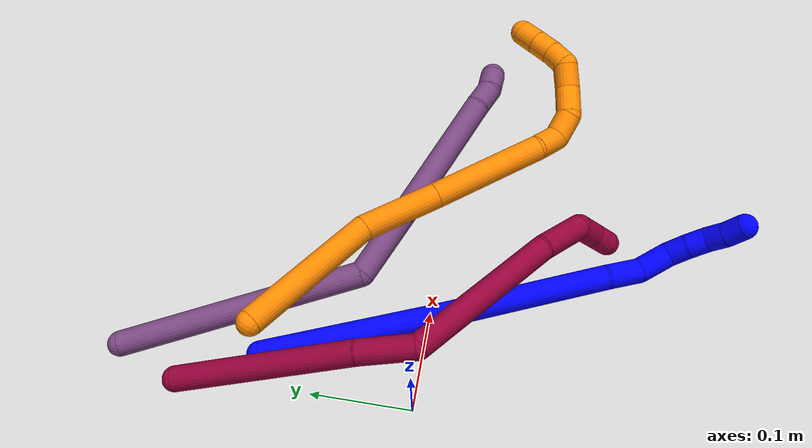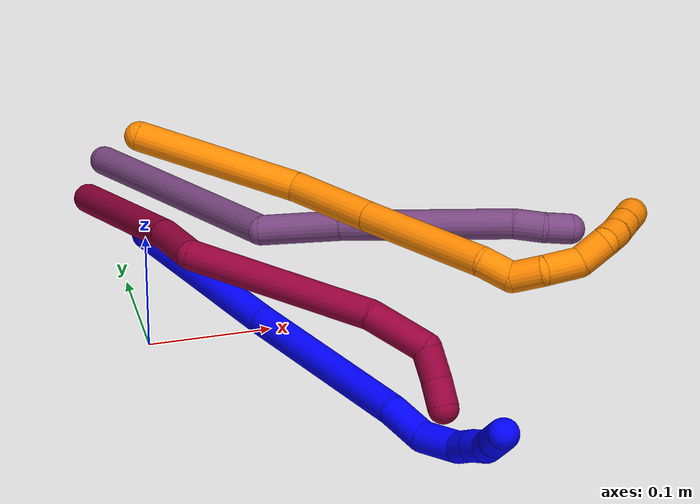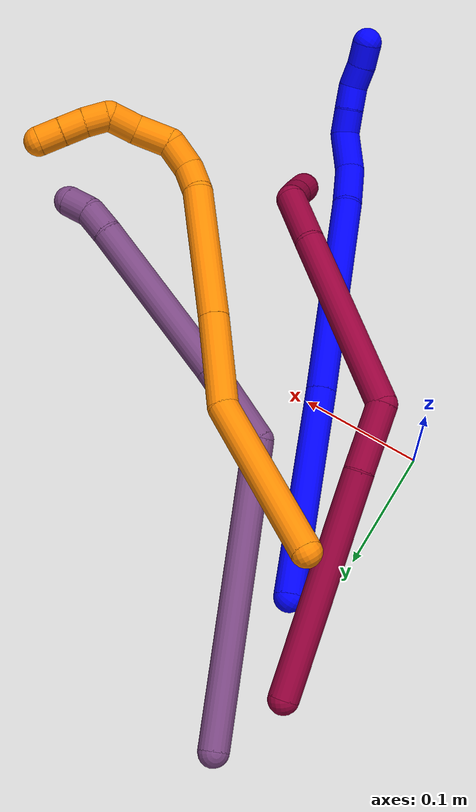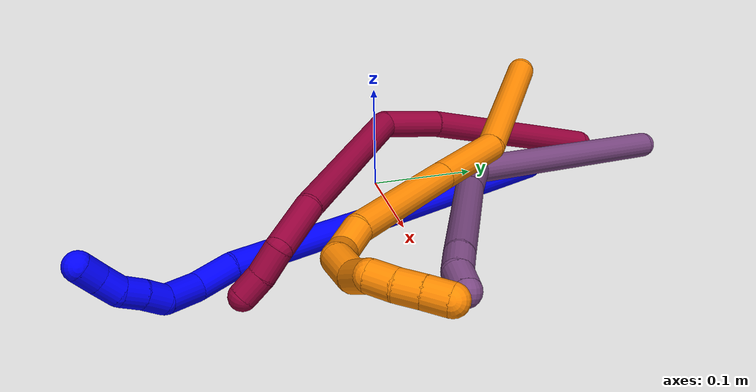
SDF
<sdf version="1.7">
 <world name="default">
  <model name="1">
   <static>0</static>
   <link name="1">
    <collision name="collision-cylinder-e_1_1_4">
     <pose>0.046167 -0.069559 0.026576 1.20585 0.554991 0.387284</pose>
     <geometry><cylinder><radius>0.0125</radius><length>0.175227</length></cylinder></geometry>
     <surface>
      <friction><ode><mu>1.16</mu><mu2>1.16</mu2><slip1>0</slip1><slip2>0</slip2></ode></friction>
      <contact><ode><kp>1e+06</kp><kd>1</kd><max_vel>0</max_vel><min_depth>0.001</min_depth></ode></contact>
     </surface>
    </collision>
    <visual name="visual-cylinder-e_1_1_4">
     <pose>0.046167 -0.069559 0.026576 1.20585 0.554991 0.387284</pose>
     <geometry><cylinder><radius>0.0125</radius><length>0.175227</length></cylinder></geometry>
     <material><ambient>0 0 1 1</ambient></material>
    </visual>
    <collision name="collision-cylinder-e_2_4_5">
     <pose>0.136479 -0.207616 0.081016 1.18444 0.538195 0.366912</pose>
     <geometry><cylinder><radius>0.0125</radius><length>0.172246</length></cylinder></geometry>
     <surface>
      <friction><ode><mu>1.16</mu><mu2>1.16</mu2><slip1>0</slip1><slip2>0</slip2></ode></friction>
      <contact><ode><kp>1e+06</kp><kd>1</kd><max_vel>0</max_vel><min_depth>0.001</min_depth></ode></contact>
     </surface>
    </collision>
    <visual name="visual-cylinder-e_2_4_5">
     <pose>0.136479 -0.207616 0.081016 1.18444 0.538195 0.366912</pose>
     <geometry><cylinder><radius>0.0125</radius><length>0.172246</length></cylinder></geometry>
     <material><ambient>0 0 1 1</ambient></material>
    </visual>
    <collision name="collision-cylinder-e_3_5_6">
     <pose>0.192838 -0.288464 0.114089 1.17179 0.738982 0.503129</pose>
     <geometry><cylinder><radius>0.0125</radius><length>0.036268</length></cylinder></geometry>
     <surface>
      <friction><ode><mu>1.16</mu><mu2>1.16</mu2><slip1>0</slip1><slip2>0</slip2></ode></friction>
      <contact><ode><kp>1e+06</kp><kd>1</kd><max_vel>0</max_vel><min_depth>0.001</min_depth></ode></contact>
     </surface>
    </collision>
    <visual name="visual-cylinder-e_3_5_6">
     <pose>0.192838 -0.288464 0.114089 1.17179 0.738982 0.503129</pose>
     <geometry><cylinder><radius>0.0125</radius><length>0.036268</length></cylinder></geometry>
     <material><ambient>0 0 1 1</ambient></material>
    </visual>
    <collision name="collision-cylinder-e_4_6_7">
     <pose>0.212732 -0.312734 0.129083 0.883285 0.462025 0.2215</pose>
     <geometry><cylinder><radius>0.0125</radius><length>0.034458</length></cylinder></geometry>
     <surface>
      <friction><ode><mu>1.16</mu><mu2>1.16</mu2><slip1>0</slip1><slip2>0</slip2></ode></friction>
      <contact><ode><kp>1e+06</kp><kd>1</kd><max_vel>0</max_vel><min_depth>0.001</min_depth></ode></contact>
     </surface>
    </collision>
    <visual name="visual-cylinder-e_4_6_7">
     <pose>0.212732 -0.312734 0.129083 0.883285 0.462025 0.2215</pose>
     <geometry><cylinder><radius>0.0125</radius><length>0.034458</length></cylinder></geometry>
     <material><ambient>0 0 1 1</ambient></material>
    </visual>
    <collision name="collision-cylinder-e_5_7_8">
     <pose>0.220395 -0.334263 0.143536 1.11885 -0.001604 -0.001004</pose>
     <geometry><cylinder><radius>0.0125</radius><length>0.021364</length></cylinder></geometry>
     <surface>
      <friction><ode><mu>1.16</mu><mu2>1.16</mu2><slip1>0</slip1><slip2>0</slip2></ode></friction>
      <contact><ode><kp>1e+06</kp><kd>1</kd><max_vel>0</max_vel><min_depth>0.001</min_depth></ode></contact>
     </surface>
    </collision>
    <visual name="visual-cylinder-e_5_7_8">
     <pose>0.220395 -0.334263 0.143536 1.11885 -0.001604 -0.001004</pose>
     <geometry><cylinder><radius>0.0125</radius><length>0.021364</length></cylinder></geometry>
     <material><ambient>0 0 1 1</ambient></material>
    </visual>
    <collision name="collision-cylinder-e_6_8_9">
     <pose>0.221396 -0.353124 0.152371 1.14733 0.099965 0.064624</pose>
     <geometry><cylinder><radius>0.0125</radius><length>0.020397</length></cylinder></geometry>
     <surface>
      <friction><ode><mu>1.16</mu><mu2>1.16</mu2><slip1>0</slip1><slip2>0</slip2></ode></friction>
      <contact><ode><kp>1e+06</kp><kd>1</kd><max_vel>0</max_vel><min_depth>0.001</min_depth></ode></contact>
     </surface>
    </collision>
    <visual name="visual-cylinder-e_6_8_9">
     <pose>0.221396 -0.353124 0.152371 1.14733 0.099965 0.064624</pose>
     <geometry><cylinder><radius>0.0125</radius><length>0.020397</length></cylinder></geometry>
     <material><ambient>0 0 1 1</ambient></material>
    </visual>
    <collision name="collision-cylinder-e_7_9_10">
     <pose>0.219901 -0.37169 0.159203 1.29237 -0.253772 -0.191839</pose>
     <geometry><cylinder><radius>0.0125</radius><length>0.020017</length></cylinder></geometry>
     <surface>
      <friction><ode><mu>1.16</mu><mu2>1.16</mu2><slip1>0</slip1><slip2>0</slip2></ode></friction>
      <contact><ode><kp>1e+06</kp><kd>1</kd><max_vel>0</max_vel><min_depth>0.001</min_depth></ode></contact>
     </surface>
    </collision>
    <visual name="visual-cylinder-e_7_9_10">
     <pose>0.219901 -0.37169 0.159203 1.29237 -0.253772 -0.191839</pose>
     <geometry><cylinder><radius>0.0125</radius><length>0.020017</length></cylinder></geometry>
     <material><ambient>0 0 1 1</ambient></material>
    </visual>
    <collision name="collision-cylinder-e_8_10_2">
     <pose>0.214698 -0.389813 0.165789 1.1518 -0.272066 -0.177291</pose>
     <geometry><cylinder><radius>0.0125</radius><length>0.020023</length></cylinder></geometry>
     <surface>
      <friction><ode><mu>1.16</mu><mu2>1.16</mu2><slip1>0</slip1><slip2>0</slip2></ode></friction>
      <contact><ode><kp>1e+06</kp><kd>1</kd><max_vel>0</max_vel><min_depth>0.001</min_depth></ode></contact>
     </surface>
    </collision>
    <visual name="visual-cylinder-e_8_10_2">
     <pose>0.214698 -0.389813 0.165789 1.1518 -0.272066 -0.177291</pose>
     <geometry><cylinder><radius>0.0125</radius><length>0.020023</length></cylinder></geometry>
     <material><ambient>0 0 1 1</ambient></material>
    </visual>
    <collision name="collision-sphere-2">
     <pose>0.212008 -0.398623 0.169712 0 -0 0</pose>
     <geometry><sphere><radius>0.0125</radius></sphere></geometry>
     <surface>
      <friction><ode><mu>1.16</mu><mu2>1.16</mu2><slip1>0</slip1><slip2>0</slip2></ode></friction>
      <contact><ode><kp>1e+06</kp><kd>1</kd><max_vel>0</max_vel><min_depth>0.001</min_depth></ode></contact>
     </surface>
    </collision>
    <visual name="visual-sphere-2">
     <pose>0.212008 -0.398623 0.169712 0 -0 0</pose>
     <geometry><sphere><radius>0.0125</radius></sphere></geometry>
     <material><ambient>0 0 1 1</ambient></material>
    </visual>
    <collision name="collision-sphere-10">
     <pose>0.217388 -0.381004 0.161866 0 -0 0</pose>
     <geometry><sphere><radius>0.0125</radius></sphere></geometry>
     <surface>
      <friction><ode><mu>1.16</mu><mu2>1.16</mu2><slip1>0</slip1><slip2>0</slip2></ode></friction>
      <contact><ode><kp>1e+06</kp><kd>1</kd><max_vel>0</max_vel><min_depth>0.001</min_depth></ode></contact>
     </surface>
    </collision>
    <visual name="visual-sphere-10">
     <pose>0.217388 -0.381004 0.161866 0 -0 0</pose>
     <geometry><sphere><radius>0.0125</radius></sphere></geometry>
     <material><ambient>0 0 1 1</ambient></material>
    </visual>
    <collision name="collision-sphere-9">
     <pose>0.222414 -0.362375 0.156541 0 -0 0</pose>
     <geometry><sphere><radius>0.0125</radius></sphere></geometry>
     <surface>
      <friction><ode><mu>1.16</mu><mu2>1.16</mu2><slip1>0</slip1><slip2>0</slip2></ode></friction>
      <contact><ode><kp>1e+06</kp><kd>1</kd><max_vel>0</max_vel><min_depth>0.001</min_depth></ode></contact>
     </surface>
    </collision>
    <visual name="visual-sphere-9">
     <pose>0.222414 -0.362375 0.156541 0 -0 0</pose>
     <geometry><sphere><radius>0.0125</radius></sphere></geometry>
     <material><ambient>0 0 1 1</ambient></material>
    </visual>
    <collision name="collision-sphere-4">
     <pose>0.092334 -0.139119 0.053151 0 -0 0</pose>
     <geometry><sphere><radius>0.0125</radius></sphere></geometry>
     <surface>
      <friction><ode><mu>1.16</mu><mu2>1.16</mu2><slip1>0</slip1><slip2>0</slip2></ode></friction>
      <contact><ode><kp>1e+06</kp><kd>1</kd><max_vel>0</max_vel><min_depth>0.001</min_depth></ode></contact>
     </surface>
    </collision>
    <visual name="visual-sphere-4">
     <pose>0.092334 -0.139119 0.053151 0 -0 0</pose>
     <geometry><sphere><radius>0.0125</radius></sphere></geometry>
     <material><ambient>0 0 1 1</ambient></material>
    </visual>
    <collision name="collision-sphere-1">
     <geometry><sphere><radius>0.0125</radius></sphere></geometry>
     <surface>
      <friction><ode><mu>1.16</mu><mu2>1.16</mu2><slip1>0</slip1><slip2>0</slip2></ode></friction>
      <contact><ode><kp>1e+06</kp><kd>1</kd><max_vel>0</max_vel><min_depth>0.001</min_depth></ode></contact>
     </surface>
    </collision>
    <visual name="visual-sphere-1">
     <geometry><sphere><radius>0.0125</radius></sphere></geometry>
     <material><ambient>0 0 1 1</ambient></material>
    </visual>
    <collision name="collision-sphere-8">
     <pose>0.220378 -0.343872 0.148201 0 -0 0</pose>
     <geometry><sphere><radius>0.0125</radius></sphere></geometry>
     <surface>
      <friction><ode><mu>1.16</mu><mu2>1.16</mu2><slip1>0</slip1><slip2>0</slip2></ode></friction>
      <contact><ode><kp>1e+06</kp><kd>1</kd><max_vel>0</max_vel><min_depth>0.001</min_depth></ode></contact>
     </surface>
    </collision>
    <visual name="visual-sphere-8">
     <pose>0.220378 -0.343872 0.148201 0 -0 0</pose>
     <geometry><sphere><radius>0.0125</radius></sphere></geometry>
     <material><ambient>0 0 1 1</ambient></material>
    </visual>
    <collision name="collision-sphere-5">
     <pose>0.180625 -0.276114 0.108881 0 -0 0</pose>
     <geometry><sphere><radius>0.0125</radius></sphere></geometry>
     <surface>
      <friction><ode><mu>1.16</mu><mu2>1.16</mu2><slip1>0</slip1><slip2>0</slip2></ode></friction>
      <contact><ode><kp>1e+06</kp><kd>1</kd><max_vel>0</max_vel><min_depth>0.001</min_depth></ode></contact>
     </surface>
    </collision>
    <visual name="visual-sphere-5">
     <pose>0.180625 -0.276114 0.108881 0 -0 0</pose>
     <geometry><sphere><radius>0.0125</radius></sphere></geometry>
     <material><ambient>0 0 1 1</ambient></material>
    </visual>
    <collision name="collision-sphere-6">
     <pose>0.205052 -0.300815 0.119296 0 -0 0</pose>
     <geometry><sphere><radius>0.0125</radius></sphere></geometry>
     <surface>
      <friction><ode><mu>1.16</mu><mu2>1.16</mu2><slip1>0</slip1><slip2>0</slip2></ode></friction>
      <contact><ode><kp>1e+06</kp><kd>1</kd><max_vel>0</max_vel><min_depth>0.001</min_depth></ode></contact>
     </surface>
    </collision>
    <visual name="visual-sphere-6">
     <pose>0.205052 -0.300815 0.119296 0 -0 0</pose>
     <geometry><sphere><radius>0.0125</radius></sphere></geometry>
     <material><ambient>0 0 1 1</ambient></material>
    </visual>
    <collision name="collision-sphere-7">
     <pose>0.220412 -0.324654 0.138871 0 -0 0</pose>
     <geometry><sphere><radius>0.0125</radius></sphere></geometry>
     <surface>
      <friction><ode><mu>1.16</mu><mu2>1.16</mu2><slip1>0</slip1><slip2>0</slip2></ode></friction>
      <contact><ode><kp>1e+06</kp><kd>1</kd><max_vel>0</max_vel><min_depth>0.001</min_depth></ode></contact>
     </surface>
    </collision>
    <visual name="visual-sphere-7">
     <pose>0.220412 -0.324654 0.138871 0 -0 0</pose>
     <geometry><sphere><radius>0.0125</radius></sphere></geometry>
     <material><ambient>0 0 1 1</ambient></material>
    </visual>
    <inertial>
     <pose>0.127694 -0.197554 0.079756 0 -0 0</pose>
     <mass>0.5</mass>
     <inertia>
      <ixx>0.001017</ixx>
      <ixy>0</ixy>
      <ixz>0</ixz>
      <iyy>0.000721</iyy>
      <iyz>0</iyz>
      <izz>0.000264</izz>
     </inertia>
    </inertial>
   </link>
   <pose>0.027678 0.154079 0.011464 -0.835893 0.973177 -0.877182</pose>
  </model>
  <model name="8">
   <static>0</static>
   <link name="8">
    <collision name="collision-cylinder-e_1_1_4">
     <pose>0.044665 -0.073542 -0.032472 1.98659 0.50712 0.757034</pose>
     <geometry><cylinder><radius>0.0125</radius><length>0.183933</length></cylinder></geometry>
     <surface>
      <friction><ode><mu>1.16</mu><mu2>1.16</mu2><slip1>0</slip1><slip2>0</slip2></ode></friction>
      <contact><ode><kp>1e+06</kp><kd>1</kd><max_vel>0</max_vel><min_depth>0.001</min_depth></ode></contact>
     </surface>
    </collision>
    <visual name="visual-cylinder-e_1_1_4">
     <pose>0.044665 -0.073542 -0.032472 1.98659 0.50712 0.757034</pose>
     <geometry><cylinder><radius>0.0125</radius><length>0.183933</length></cylinder></geometry>
     <material><ambient>0.584314 0 0.227451 1</ambient></material>
    </visual>
    <collision name="collision-cylinder-e_2_4_5">
     <pose>0.106014 -0.167622 -0.074491 2.00596 0.63495 0.951338</pose>
     <geometry><cylinder><radius>0.0125</radius><length>0.056261</length></cylinder></geometry>
     <surface>
      <friction><ode><mu>1.16</mu><mu2>1.16</mu2><slip1>0</slip1><slip2>0</slip2></ode></friction>
      <contact><ode><kp>1e+06</kp><kd>1</kd><max_vel>0</max_vel><min_depth>0.001</min_depth></ode></contact>
     </surface>
    </collision>
    <visual name="visual-cylinder-e_2_4_5">
     <pose>0.106014 -0.167622 -0.074491 2.00596 0.63495 0.951338</pose>
     <geometry><cylinder><radius>0.0125</radius><length>0.056261</length></cylinder></geometry>
     <material><ambient>0.584314 0 0.227451 1</ambient></material>
    </visual>
    <collision name="collision-cylinder-e_3_5_6">
     <pose>0.17516 -0.239551 -0.054064 1.04278 0.722649 0.427523</pose>
     <geometry><cylinder><radius>0.0125</radius><length>0.158642</length></cylinder></geometry>
     <surface>
      <friction><ode><mu>1.16</mu><mu2>1.16</mu2><slip1>0</slip1><slip2>0</slip2></ode></friction>
      <contact><ode><kp>1e+06</kp><kd>1</kd><max_vel>0</max_vel><min_depth>0.001</min_depth></ode></contact>
     </surface>
    </collision>
    <visual name="visual-cylinder-e_3_5_6">
     <pose>0.17516 -0.239551 -0.054064 1.04278 0.722649 0.427523</pose>
     <geometry><cylinder><radius>0.0125</radius><length>0.158642</length></cylinder></geometry>
     <material><ambient>0.584314 0 0.227451 1</ambient></material>
    </visual>
    <collision name="collision-cylinder-e_4_6_7">
     <pose>0.248468 -0.303165 -0.014624 0.911806 0.932756 0.484031</pose>
     <geometry><cylinder><radius>0.0125</radius><length>0.051905</length></cylinder></geometry>
     <surface>
      <friction><ode><mu>1.16</mu><mu2>1.16</mu2><slip1>0</slip1><slip2>0</slip2></ode></friction>
      <contact><ode><kp>1e+06</kp><kd>1</kd><max_vel>0</max_vel><min_depth>0.001</min_depth></ode></contact>
     </surface>
    </collision>
    <visual name="visual-cylinder-e_4_6_7">
     <pose>0.248468 -0.303165 -0.014624 0.911806 0.932756 0.484031</pose>
     <geometry><cylinder><radius>0.0125</radius><length>0.051905</length></cylinder></geometry>
     <material><ambient>0.584314 0 0.227451 1</ambient></material>
    </visual>
    <collision name="collision-cylinder-e_5_7_8">
     <pose>0.282415 -0.31356 -0.004885 -1.4221 1.43077 -1.28503</pose>
     <geometry><cylinder><radius>0.0125</radius><length>0.026459</length></cylinder></geometry>
     <surface>
      <friction><ode><mu>1.16</mu><mu2>1.16</mu2><slip1>0</slip1><slip2>0</slip2></ode></friction>
      <contact><ode><kp>1e+06</kp><kd>1</kd><max_vel>0</max_vel><min_depth>0.001</min_depth></ode></contact>
     </surface>
    </collision>
    <visual name="visual-cylinder-e_5_7_8">
     <pose>0.282415 -0.31356 -0.004885 -1.4221 1.43077 -1.28503</pose>
     <geometry><cylinder><radius>0.0125</radius><length>0.026459</length></cylinder></geometry>
     <material><ambient>0.584314 0 0.227451 1</ambient></material>
    </visual>
    <collision name="collision-cylinder-e_6_8_2">
     <pose>0.306789 -0.310939 -0.006098 -2.6505 1.42239 -2.5755</pose>
     <geometry><cylinder><radius>0.0125</radius><length>0.0228</length></cylinder></geometry>
     <surface>
      <friction><ode><mu>1.16</mu><mu2>1.16</mu2><slip1>0</slip1><slip2>0</slip2></ode></friction>
      <contact><ode><kp>1e+06</kp><kd>1</kd><max_vel>0</max_vel><min_depth>0.001</min_depth></ode></contact>
     </surface>
    </collision>
    <visual name="visual-cylinder-e_6_8_2">
     <pose>0.306789 -0.310939 -0.006098 -2.6505 1.42239 -2.5755</pose>
     <geometry><cylinder><radius>0.0125</radius><length>0.0228</length></cylinder></geometry>
     <material><ambient>0.584314 0 0.227451 1</ambient></material>
    </visual>
    <collision name="collision-sphere-2">
     <pose>0.318064 -0.310144 -0.007584 0 -0 0</pose>
     <geometry><sphere><radius>0.0125</radius></sphere></geometry>
     <surface>
      <friction><ode><mu>1.16</mu><mu2>1.16</mu2><slip1>0</slip1><slip2>0</slip2></ode></friction>
      <contact><ode><kp>1e+06</kp><kd>1</kd><max_vel>0</max_vel><min_depth>0.001</min_depth></ode></contact>
     </surface>
    </collision>
    <visual name="visual-sphere-2">
     <pose>0.318064 -0.310144 -0.007584 0 -0 0</pose>
     <geometry><sphere><radius>0.0125</radius></sphere></geometry>
     <material><ambient>0.584314 0 0.227451 1</ambient></material>
    </visual>
    <collision name="collision-sphere-4">
     <pose>0.089329 -0.147085 -0.064944 0 -0 0</pose>
     <geometry><sphere><radius>0.0125</radius></sphere></geometry>
     <surface>
      <friction><ode><mu>1.16</mu><mu2>1.16</mu2><slip1>0</slip1><slip2>0</slip2></ode></friction>
      <contact><ode><kp>1e+06</kp><kd>1</kd><max_vel>0</max_vel><min_depth>0.001</min_depth></ode></contact>
     </surface>
    </collision>
    <visual name="visual-sphere-4">
     <pose>0.089329 -0.147085 -0.064944 0 -0 0</pose>
     <geometry><sphere><radius>0.0125</radius></sphere></geometry>
     <material><ambient>0.584314 0 0.227451 1</ambient></material>
    </visual>
    <collision name="collision-sphere-1">
     <geometry><sphere><radius>0.0125</radius></sphere></geometry>
     <surface>
      <friction><ode><mu>1.16</mu><mu2>1.16</mu2><slip1>0</slip1><slip2>0</slip2></ode></friction>
      <contact><ode><kp>1e+06</kp><kd>1</kd><max_vel>0</max_vel><min_depth>0.001</min_depth></ode></contact>
     </surface>
    </collision>
    <visual name="visual-sphere-1">
     <geometry><sphere><radius>0.0125</radius></sphere></geometry>
     <material><ambient>0.584314 0 0.227451 1</ambient></material>
    </visual>
    <collision name="collision-sphere-8">
     <pose>0.295515 -0.311734 -0.004611 0 -0 0</pose>
     <geometry><sphere><radius>0.0125</radius></sphere></geometry>
     <surface>
      <friction><ode><mu>1.16</mu><mu2>1.16</mu2><slip1>0</slip1><slip2>0</slip2></ode></friction>
      <contact><ode><kp>1e+06</kp><kd>1</kd><max_vel>0</max_vel><min_depth>0.001</min_depth></ode></contact>
     </surface>
    </collision>
    <visual name="visual-sphere-8">
     <pose>0.295515 -0.311734 -0.004611 0 -0 0</pose>
     <geometry><sphere><radius>0.0125</radius></sphere></geometry>
     <material><ambient>0.584314 0 0.227451 1</ambient></material>
    </visual>
    <collision name="collision-sphere-5">
     <pose>0.1227 -0.188159 -0.084039 0 -0 0</pose>
     <geometry><sphere><radius>0.0125</radius></sphere></geometry>
     <surface>
      <friction><ode><mu>1.16</mu><mu2>1.16</mu2><slip1>0</slip1><slip2>0</slip2></ode></friction>
      <contact><ode><kp>1e+06</kp><kd>1</kd><max_vel>0</max_vel><min_depth>0.001</min_depth></ode></contact>
     </surface>
    </collision>
    <visual name="visual-sphere-5">
     <pose>0.1227 -0.188159 -0.084039 0 -0 0</pose>
     <geometry><sphere><radius>0.0125</radius></sphere></geometry>
     <material><ambient>0.584314 0 0.227451 1</ambient></material>
    </visual>
    <collision name="collision-sphere-6">
     <pose>0.227621 -0.290944 -0.024089 0 -0 0</pose>
     <geometry><sphere><radius>0.0125</radius></sphere></geometry>
     <surface>
      <friction><ode><mu>1.16</mu><mu2>1.16</mu2><slip1>0</slip1><slip2>0</slip2></ode></friction>
      <contact><ode><kp>1e+06</kp><kd>1</kd><max_vel>0</max_vel><min_depth>0.001</min_depth></ode></contact>
     </surface>
    </collision>
    <visual name="visual-sphere-6">
     <pose>0.227621 -0.290944 -0.024089 0 -0 0</pose>
     <geometry><sphere><radius>0.0125</radius></sphere></geometry>
     <material><ambient>0.584314 0 0.227451 1</ambient></material>
    </visual>
    <collision name="collision-sphere-7">
     <pose>0.269315 -0.315386 -0.005158 0 -0 0</pose>
     <geometry><sphere><radius>0.0125</radius></sphere></geometry>
     <surface>
      <friction><ode><mu>1.16</mu><mu2>1.16</mu2><slip1>0</slip1><slip2>0</slip2></ode></friction>
      <contact><ode><kp>1e+06</kp><kd>1</kd><max_vel>0</max_vel><min_depth>0.001</min_depth></ode></contact>
     </surface>
    </collision>
    <visual name="visual-sphere-7">
     <pose>0.269315 -0.315386 -0.005158 0 -0 0</pose>
     <geometry><sphere><radius>0.0125</radius></sphere></geometry>
     <material><ambient>0.584314 0 0.227451 1</ambient></material>
    </visual>
    <inertial>
     <pose>0.138663 -0.184164 -0.039536 0 -0 0</pose>
     <mass>0.5</mass>
     <inertia>
      <ixx>0.001041</ixx>
      <ixy>0</ixy>
      <ixz>0</ixz>
      <iyy>0.000672</iyy>
      <iyz>0</iyz>
      <izz>0.000153</izz>
     </inertia>
    </inertial>
   </link>
   <pose>-0.009592 0.226153 0.011874 -1.89711 0.748783 -1.28743</pose>
  </model>
  <model name="19">
   <static>0</static>
   <link name="19">
    <collision name="collision-cylinder-e_1_1_4">
     <pose>0.03978 0.0179 0.054421 -0.31778 0.606943 -0.100273</pose>
     <geometry><cylinder><radius>0.0125</radius><length>0.139492</length></cylinder></geometry>
     <surface>
      <friction><ode><mu>1.16</mu><mu2>1.16</mu2><slip1>0</slip1><slip2>0</slip2></ode></friction>
      <contact><ode><kp>1e+06</kp><kd>1</kd><max_vel>0</max_vel><min_depth>0.001</min_depth></ode></contact>
     </surface>
    </collision>
    <visual name="visual-cylinder-e_1_1_4">
     <pose>0.03978 0.0179 0.054421 -0.31778 0.606943 -0.100273</pose>
     <geometry><cylinder><radius>0.0125</radius><length>0.139492</length></cylinder></geometry>
     <material><ambient>0.996078 0.537255 0 1</ambient></material>
    </visual>
    <collision name="collision-cylinder-e_2_4_5">
     <pose>0.102343 0.030559 0.138924 0.172505 0.640988 0.057388</pose>
     <geometry><cylinder><radius>0.0125</radius><length>0.076197</length></cylinder></geometry>
     <surface>
      <friction><ode><mu>1.16</mu><mu2>1.16</mu2><slip1>0</slip1><slip2>0</slip2></ode></friction>
      <contact><ode><kp>1e+06</kp><kd>1</kd><max_vel>0</max_vel><min_depth>0.001</min_depth></ode></contact>
     </surface>
    </collision>
    <visual name="visual-cylinder-e_2_4_5">
     <pose>0.102343 0.030559 0.138924 0.172505 0.640988 0.057388</pose>
     <geometry><cylinder><radius>0.0125</radius><length>0.076197</length></cylinder></geometry>
     <material><ambient>0.996078 0.537255 0 1</ambient></material>
    </visual>
    <collision name="collision-cylinder-e_3_5_6">
     <pose>0.158636 0.018524 0.214314 0.148851 0.631528 0.048709</pose>
     <geometry><cylinder><radius>0.0125</radius><length>0.113523</length></cylinder></geometry>
     <surface>
      <friction><ode><mu>1.16</mu><mu2>1.16</mu2><slip1>0</slip1><slip2>0</slip2></ode></friction>
      <contact><ode><kp>1e+06</kp><kd>1</kd><max_vel>0</max_vel><min_depth>0.001</min_depth></ode></contact>
     </surface>
    </collision>
    <visual name="visual-cylinder-e_3_5_6">
     <pose>0.158636 0.018524 0.214314 0.148851 0.631528 0.048709</pose>
     <geometry><cylinder><radius>0.0125</radius><length>0.113523</length></cylinder></geometry>
     <material><ambient>0.996078 0.537255 0 1</ambient></material>
    </visual>
    <collision name="collision-cylinder-e_4_6_7">
     <pose>0.201612 0.013764 0.26913 -0.210836 0.771921 -0.085937</pose>
     <geometry><cylinder><radius>0.0125</radius><length>0.027141</length></cylinder></geometry>
     <surface>
      <friction><ode><mu>1.16</mu><mu2>1.16</mu2><slip1>0</slip1><slip2>0</slip2></ode></friction>
      <contact><ode><kp>1e+06</kp><kd>1</kd><max_vel>0</max_vel><min_depth>0.001</min_depth></ode></contact>
     </surface>
    </collision>
    <visual name="visual-cylinder-e_4_6_7">
     <pose>0.201612 0.013764 0.26913 -0.210836 0.771921 -0.085937</pose>
     <geometry><cylinder><radius>0.0125</radius><length>0.027141</length></cylinder></geometry>
     <material><ambient>0.996078 0.537255 0 1</ambient></material>
    </visual>
    <collision name="collision-cylinder-e_5_7_8">
     <pose>0.21244 0.018211 0.291212 -0.189474 0.106005 -0.010082</pose>
     <geometry><cylinder><radius>0.0125</radius><length>0.025749</length></cylinder></geometry>
     <surface>
      <friction><ode><mu>1.16</mu><mu2>1.16</mu2><slip1>0</slip1><slip2>0</slip2></ode></friction>
      <contact><ode><kp>1e+06</kp><kd>1</kd><max_vel>0</max_vel><min_depth>0.001</min_depth></ode></contact>
     </surface>
    </collision>
    <visual name="visual-cylinder-e_5_7_8">
     <pose>0.21244 0.018211 0.291212 -0.189474 0.106005 -0.010082</pose>
     <geometry><cylinder><radius>0.0125</radius><length>0.025749</length></cylinder></geometry>
     <material><ambient>0.996078 0.537255 0 1</ambient></material>
    </visual>
    <collision name="collision-cylinder-e_6_8_9">
     <pose>0.213935 0.031405 0.315097 -0.761477 0.008478 -0.003394</pose>
     <geometry><cylinder><radius>0.0125</radius><length>0.031258</length></cylinder></geometry>
     <surface>
      <friction><ode><mu>1.16</mu><mu2>1.16</mu2><slip1>0</slip1><slip2>0</slip2></ode></friction>
      <contact><ode><kp>1e+06</kp><kd>1</kd><max_vel>0</max_vel><min_depth>0.001</min_depth></ode></contact>
     </surface>
    </collision>
    <visual name="visual-cylinder-e_6_8_9">
     <pose>0.213935 0.031405 0.315097 -0.761477 0.008478 -0.003394</pose>
     <geometry><cylinder><radius>0.0125</radius><length>0.031258</length></cylinder></geometry>
     <material><ambient>0.996078 0.537255 0 1</ambient></material>
    </visual>
    <collision name="collision-cylinder-e_7_9_10">
     <pose>0.209063 0.048193 0.336428 -0.539901 -0.404769 0.113434</pose>
     <geometry><cylinder><radius>0.0125</radius><length>0.025413</length></cylinder></geometry>
     <surface>
      <friction><ode><mu>1.16</mu><mu2>1.16</mu2><slip1>0</slip1><slip2>0</slip2></ode></friction>
      <contact><ode><kp>1e+06</kp><kd>1</kd><max_vel>0</max_vel><min_depth>0.001</min_depth></ode></contact>
     </surface>
    </collision>
    <visual name="visual-cylinder-e_7_9_10">
     <pose>0.209063 0.048193 0.336428 -0.539901 -0.404769 0.113434</pose>
     <geometry><cylinder><radius>0.0125</radius><length>0.025413</length></cylinder></geometry>
     <material><ambient>0.996078 0.537255 0 1</ambient></material>
    </visual>
    <collision name="collision-cylinder-e_8_10_11">
     <pose>0.200757 0.06378 0.348503 -1.35942 -0.324964 0.263433</pose>
     <geometry><cylinder><radius>0.0125</radius><length>0.020685</length></cylinder></geometry>
     <surface>
      <friction><ode><mu>1.16</mu><mu2>1.16</mu2><slip1>0</slip1><slip2>0</slip2></ode></friction>
      <contact><ode><kp>1e+06</kp><kd>1</kd><max_vel>0</max_vel><min_depth>0.001</min_depth></ode></contact>
     </surface>
    </collision>
    <visual name="visual-cylinder-e_8_10_11">
     <pose>0.200757 0.06378 0.348503 -1.35942 -0.324964 0.263433</pose>
     <geometry><cylinder><radius>0.0125</radius><length>0.020685</length></cylinder></geometry>
     <material><ambient>0.996078 0.537255 0 1</ambient></material>
    </visual>
    <collision name="collision-cylinder-e_9_11_12">
     <pose>0.193458 0.082687 0.351455 -1.47496 -0.403295 0.36725</pose>
     <geometry><cylinder><radius>0.0125</radius><length>0.020368</length></cylinder></geometry>
     <surface>
      <friction><ode><mu>1.16</mu><mu2>1.16</mu2><slip1>0</slip1><slip2>0</slip2></ode></friction>
      <contact><ode><kp>1e+06</kp><kd>1</kd><max_vel>0</max_vel><min_depth>0.001</min_depth></ode></contact>
     </surface>
    </collision>
    <visual name="visual-cylinder-e_9_11_12">
     <pose>0.193458 0.082687 0.351455 -1.47496 -0.403295 0.36725</pose>
     <geometry><cylinder><radius>0.0125</radius><length>0.020368</length></cylinder></geometry>
     <material><ambient>0.996078 0.537255 0 1</ambient></material>
    </visual>
    <collision name="collision-cylinder-e_10_12_2">
     <pose>0.185734 0.101347 0.353185 -1.48183 -0.3785 0.346912</pose>
     <geometry><cylinder><radius>0.0125</radius><length>0.020174</length></cylinder></geometry>
     <surface>
      <friction><ode><mu>1.16</mu><mu2>1.16</mu2><slip1>0</slip1><slip2>0</slip2></ode></friction>
      <contact><ode><kp>1e+06</kp><kd>1</kd><max_vel>0</max_vel><min_depth>0.001</min_depth></ode></contact>
     </surface>
    </collision>
    <visual name="visual-cylinder-e_10_12_2">
     <pose>0.185734 0.101347 0.353185 -1.48183 -0.3785 0.346912</pose>
     <geometry><cylinder><radius>0.0125</radius><length>0.020174</length></cylinder></geometry>
     <material><ambient>0.996078 0.537255 0 1</ambient></material>
    </visual>
    <collision name="collision-sphere-2">
     <pose>0.182007 0.110683 0.354017 0 -0 0</pose>
     <geometry><sphere><radius>0.0125</radius></sphere></geometry>
     <surface>
      <friction><ode><mu>1.16</mu><mu2>1.16</mu2><slip1>0</slip1><slip2>0</slip2></ode></friction>
      <contact><ode><kp>1e+06</kp><kd>1</kd><max_vel>0</max_vel><min_depth>0.001</min_depth></ode></contact>
     </surface>
    </collision>
    <visual name="visual-sphere-2">
     <pose>0.182007 0.110683 0.354017 0 -0 0</pose>
     <geometry><sphere><radius>0.0125</radius></sphere></geometry>
     <material><ambient>0.996078 0.537255 0 1</ambient></material>
    </visual>
    <collision name="collision-sphere-12">
     <pose>0.189462 0.092011 0.352352 0 -0 0</pose>
     <geometry><sphere><radius>0.0125</radius></sphere></geometry>
     <surface>
      <friction><ode><mu>1.16</mu><mu2>1.16</mu2><slip1>0</slip1><slip2>0</slip2></ode></friction>
      <contact><ode><kp>1e+06</kp><kd>1</kd><max_vel>0</max_vel><min_depth>0.001</min_depth></ode></contact>
     </surface>
    </collision>
    <visual name="visual-sphere-12">
     <pose>0.189462 0.092011 0.352352 0 -0 0</pose>
     <geometry><sphere><radius>0.0125</radius></sphere></geometry>
     <material><ambient>0.996078 0.537255 0 1</ambient></material>
    </visual>
    <collision name="collision-sphere-11">
     <pose>0.197455 0.073364 0.350559 0 -0 0</pose>
     <geometry><sphere><radius>0.0125</radius></sphere></geometry>
     <surface>
      <friction><ode><mu>1.16</mu><mu2>1.16</mu2><slip1>0</slip1><slip2>0</slip2></ode></friction>
      <contact><ode><kp>1e+06</kp><kd>1</kd><max_vel>0</max_vel><min_depth>0.001</min_depth></ode></contact>
     </surface>
    </collision>
    <visual name="visual-sphere-11">
     <pose>0.197455 0.073364 0.350559 0 -0 0</pose>
     <geometry><sphere><radius>0.0125</radius></sphere></geometry>
     <material><ambient>0.996078 0.537255 0 1</ambient></material>
    </visual>
    <collision name="collision-sphere-10">
     <pose>0.204059 0.054197 0.346446 0 -0 0</pose>
     <geometry><sphere><radius>0.0125</radius></sphere></geometry>
     <surface>
      <friction><ode><mu>1.16</mu><mu2>1.16</mu2><slip1>0</slip1><slip2>0</slip2></ode></friction>
      <contact><ode><kp>1e+06</kp><kd>1</kd><max_vel>0</max_vel><min_depth>0.001</min_depth></ode></contact>
     </surface>
    </collision>
    <visual name="visual-sphere-10">
     <pose>0.204059 0.054197 0.346446 0 -0 0</pose>
     <geometry><sphere><radius>0.0125</radius></sphere></geometry>
     <material><ambient>0.996078 0.537255 0 1</ambient></material>
    </visual>
    <collision name="collision-sphere-9">
     <pose>0.214067 0.042189 0.326409 0 -0 0</pose>
     <geometry><sphere><radius>0.0125</radius></sphere></geometry>
     <surface>
      <friction><ode><mu>1.16</mu><mu2>1.16</mu2><slip1>0</slip1><slip2>0</slip2></ode></friction>
      <contact><ode><kp>1e+06</kp><kd>1</kd><max_vel>0</max_vel><min_depth>0.001</min_depth></ode></contact>
     </surface>
    </collision>
    <visual name="visual-sphere-9">
     <pose>0.214067 0.042189 0.326409 0 -0 0</pose>
     <geometry><sphere><radius>0.0125</radius></sphere></geometry>
     <material><ambient>0.996078 0.537255 0 1</ambient></material>
    </visual>
    <collision name="collision-sphere-4">
     <pose>0.079561 0.035801 0.108841 0 -0 0</pose>
     <geometry><sphere><radius>0.0125</radius></sphere></geometry>
     <surface>
      <friction><ode><mu>1.16</mu><mu2>1.16</mu2><slip1>0</slip1><slip2>0</slip2></ode></friction>
      <contact><ode><kp>1e+06</kp><kd>1</kd><max_vel>0</max_vel><min_depth>0.001</min_depth></ode></contact>
     </surface>
    </collision>
    <visual name="visual-sphere-4">
     <pose>0.079561 0.035801 0.108841 0 -0 0</pose>
     <geometry><sphere><radius>0.0125</radius></sphere></geometry>
     <material><ambient>0.996078 0.537255 0 1</ambient></material>
    </visual>
    <collision name="collision-sphere-1">
     <geometry><sphere><radius>0.0125</radius></sphere></geometry>
     <surface>
      <friction><ode><mu>1.16</mu><mu2>1.16</mu2><slip1>0</slip1><slip2>0</slip2></ode></friction>
      <contact><ode><kp>1e+06</kp><kd>1</kd><max_vel>0</max_vel><min_depth>0.001</min_depth></ode></contact>
     </surface>
    </collision>
    <visual name="visual-sphere-1">
     <geometry><sphere><radius>0.0125</radius></sphere></geometry>
     <material><ambient>0.996078 0.537255 0 1</ambient></material>
    </visual>
    <collision name="collision-sphere-8">
     <pose>0.213802 0.020622 0.303785 0 -0 0</pose>
     <geometry><sphere><radius>0.0125</radius></sphere></geometry>
     <surface>
      <friction><ode><mu>1.16</mu><mu2>1.16</mu2><slip1>0</slip1><slip2>0</slip2></ode></friction>
      <contact><ode><kp>1e+06</kp><kd>1</kd><max_vel>0</max_vel><min_depth>0.001</min_depth></ode></contact>
     </surface>
    </collision>
    <visual name="visual-sphere-8">
     <pose>0.213802 0.020622 0.303785 0 -0 0</pose>
     <geometry><sphere><radius>0.0125</radius></sphere></geometry>
     <material><ambient>0.996078 0.537255 0 1</ambient></material>
    </visual>
    <collision name="collision-sphere-5">
     <pose>0.125125 0.025318 0.169007 0 -0 0</pose>
     <geometry><sphere><radius>0.0125</radius></sphere></geometry>
     <surface>
      <friction><ode><mu>1.16</mu><mu2>1.16</mu2><slip1>0</slip1><slip2>0</slip2></ode></friction>
      <contact><ode><kp>1e+06</kp><kd>1</kd><max_vel>0</max_vel><min_depth>0.001</min_depth></ode></contact>
     </surface>
    </collision>
    <visual name="visual-sphere-5">
     <pose>0.125125 0.025318 0.169007 0 -0 0</pose>
     <geometry><sphere><radius>0.0125</radius></sphere></geometry>
     <material><ambient>0.996078 0.537255 0 1</ambient></material>
    </visual>
    <collision name="collision-sphere-6">
     <pose>0.192147 0.011729 0.259621 0 -0 0</pose>
     <geometry><sphere><radius>0.0125</radius></sphere></geometry>
     <surface>
      <friction><ode><mu>1.16</mu><mu2>1.16</mu2><slip1>0</slip1><slip2>0</slip2></ode></friction>
      <contact><ode><kp>1e+06</kp><kd>1</kd><max_vel>0</max_vel><min_depth>0.001</min_depth></ode></contact>
     </surface>
    </collision>
    <visual name="visual-sphere-6">
     <pose>0.192147 0.011729 0.259621 0 -0 0</pose>
     <geometry><sphere><radius>0.0125</radius></sphere></geometry>
     <material><ambient>0.996078 0.537255 0 1</ambient></material>
    </visual>
    <collision name="collision-sphere-7">
     <pose>0.211078 0.015799 0.278639 0 -0 0</pose>
     <geometry><sphere><radius>0.0125</radius></sphere></geometry>
     <surface>
      <friction><ode><mu>1.16</mu><mu2>1.16</mu2><slip1>0</slip1><slip2>0</slip2></ode></friction>
      <contact><ode><kp>1e+06</kp><kd>1</kd><max_vel>0</max_vel><min_depth>0.001</min_depth></ode></contact>
     </surface>
    </collision>
    <visual name="visual-sphere-7">
     <pose>0.211078 0.015799 0.278639 0 -0 0</pose>
     <geometry><sphere><radius>0.0125</radius></sphere></geometry>
     <material><ambient>0.996078 0.537255 0 1</ambient></material>
    </visual>
    <inertial>
     <pose>0.132277 0.030051 0.194401 0 -0 0</pose>
     <mass>0.5</mass>
     <inertia>
      <ixx>0.000341</ixx>
      <ixy>0</ixy>
      <ixz>0</ixz>
      <iyy>0.000397</iyy>
      <iyz>0</iyz>
      <izz>-0.00025</izz>
     </inertia>
    </inertial>
   </link>
   <pose>0.022626 0.143409 0.112399 -0.755039 0.847627 -1.38657</pose>
  </model>
  <model name="20">
   <static>0</static>
   <link name="20">
    <collision name="collision-cylinder-e_1_1_4">
     <pose>0.090325 -0.080598 0.011291 1.43161 0.837416 0.73854</pose>
     <geometry><cylinder><radius>0.0125</radius><length>0.243163</length></cylinder></geometry>
     <surface>
      <friction><ode><mu>1.16</mu><mu2>1.16</mu2><slip1>0</slip1><slip2>0</slip2></ode></friction>
      <contact><ode><kp>1e+06</kp><kd>1</kd><max_vel>0</max_vel><min_depth>0.001</min_depth></ode></contact>
     </surface>
    </collision>
    <visual name="visual-cylinder-e_1_1_4">
     <pose>0.090325 -0.080598 0.011291 1.43161 0.837416 0.73854</pose>
     <geometry><cylinder><radius>0.0125</radius><length>0.243163</length></cylinder></geometry>
     <material><ambient>0.478431 0.278431 0.509804 1</ambient></material>
    </visual>
    <collision name="collision-cylinder-e_2_4_5">
     <pose>0.184254 -0.194439 0.029079 1.37783 0.106006 0.087324</pose>
     <geometry><cylinder><radius>0.0125</radius><length>0.068127</length></cylinder></geometry>
     <surface>
      <friction><ode><mu>1.16</mu><mu2>1.16</mu2><slip1>0</slip1><slip2>0</slip2></ode></friction>
      <contact><ode><kp>1e+06</kp><kd>1</kd><max_vel>0</max_vel><min_depth>0.001</min_depth></ode></contact>
     </surface>
    </collision>
    <visual name="visual-cylinder-e_2_4_5">
     <pose>0.184254 -0.194439 0.029079 1.37783 0.106006 0.087324</pose>
     <geometry><cylinder><radius>0.0125</radius><length>0.068127</length></cylinder></geometry>
     <material><ambient>0.478431 0.278431 0.509804 1</ambient></material>
    </visual>
    <collision name="collision-cylinder-e_3_5_6">
     <pose>0.19277 -0.296218 0.054364 1.30321 0.069009 0.052644</pose>
     <geometry><cylinder><radius>0.0125</radius><length>0.142468</length></cylinder></geometry>
     <surface>
      <friction><ode><mu>1.16</mu><mu2>1.16</mu2><slip1>0</slip1><slip2>0</slip2></ode></friction>
      <contact><ode><kp>1e+06</kp><kd>1</kd><max_vel>0</max_vel><min_depth>0.001</min_depth></ode></contact>
     </surface>
    </collision>
    <visual name="visual-cylinder-e_3_5_6">
     <pose>0.19277 -0.296218 0.054364 1.30321 0.069009 0.052644</pose>
     <geometry><cylinder><radius>0.0125</radius><length>0.142468</length></cylinder></geometry>
     <material><ambient>0.478431 0.278431 0.509804 1</ambient></material>
    </visual>
    <collision name="collision-cylinder-e_4_6_7">
     <pose>0.198439 -0.3758 0.078173 1.14434 0.062315 0.040141</pose>
     <geometry><cylinder><radius>0.0125</radius><length>0.024313</length></cylinder></geometry>
     <surface>
      <friction><ode><mu>1.16</mu><mu2>1.16</mu2><slip1>0</slip1><slip2>0</slip2></ode></friction>
      <contact><ode><kp>1e+06</kp><kd>1</kd><max_vel>0</max_vel><min_depth>0.001</min_depth></ode></contact>
     </surface>
    </collision>
    <visual name="visual-cylinder-e_4_6_7">
     <pose>0.198439 -0.3758 0.078173 1.14434 0.062315 0.040141</pose>
     <geometry><cylinder><radius>0.0125</radius><length>0.024313</length></cylinder></geometry>
     <material><ambient>0.478431 0.278431 0.509804 1</ambient></material>
    </visual>
    <collision name="collision-cylinder-e_5_7_2">
     <pose>0.196175 -0.395927 0.088542 1.03842 -0.27917 -0.160249</pose>
     <geometry><cylinder><radius>0.0125</radius><length>0.021929</length></cylinder></geometry>
     <surface>
      <friction><ode><mu>1.16</mu><mu2>1.16</mu2><slip1>0</slip1><slip2>0</slip2></ode></friction>
      <contact><ode><kp>1e+06</kp><kd>1</kd><max_vel>0</max_vel><min_depth>0.001</min_depth></ode></contact>
     </surface>
    </collision>
    <visual name="visual-cylinder-e_5_7_2">
     <pose>0.196175 -0.395927 0.088542 1.03842 -0.27917 -0.160249</pose>
     <geometry><cylinder><radius>0.0125</radius><length>0.021929</length></cylinder></geometry>
     <material><ambient>0.478431 0.278431 0.509804 1</ambient></material>
    </visual>
    <collision name="collision-sphere-2">
     <pose>0.193154 -0.405008 0.093892 0 -0 0</pose>
     <geometry><sphere><radius>0.0125</radius></sphere></geometry>
     <surface>
      <friction><ode><mu>1.16</mu><mu2>1.16</mu2><slip1>0</slip1><slip2>0</slip2></ode></friction>
      <contact><ode><kp>1e+06</kp><kd>1</kd><max_vel>0</max_vel><min_depth>0.001</min_depth></ode></contact>
     </surface>
    </collision>
    <visual name="visual-sphere-2">
     <pose>0.193154 -0.405008 0.093892 0 -0 0</pose>
     <geometry><sphere><radius>0.0125</radius></sphere></geometry>
     <material><ambient>0.478431 0.278431 0.509804 1</ambient></material>
    </visual>
    <collision name="collision-sphere-7">
     <pose>0.199196 -0.386846 0.083192 0 -0 0</pose>
     <geometry><sphere><radius>0.0125</radius></sphere></geometry>
     <surface>
      <friction><ode><mu>1.16</mu><mu2>1.16</mu2><slip1>0</slip1><slip2>0</slip2></ode></friction>
      <contact><ode><kp>1e+06</kp><kd>1</kd><max_vel>0</max_vel><min_depth>0.001</min_depth></ode></contact>
     </surface>
    </collision>
    <visual name="visual-sphere-7">
     <pose>0.199196 -0.386846 0.083192 0 -0 0</pose>
     <geometry><sphere><radius>0.0125</radius></sphere></geometry>
     <material><ambient>0.478431 0.278431 0.509804 1</ambient></material>
    </visual>
    <collision name="collision-sphere-6">
     <pose>0.197682 -0.364754 0.073154 0 -0 0</pose>
     <geometry><sphere><radius>0.0125</radius></sphere></geometry>
     <surface>
      <friction><ode><mu>1.16</mu><mu2>1.16</mu2><slip1>0</slip1><slip2>0</slip2></ode></friction>
      <contact><ode><kp>1e+06</kp><kd>1</kd><max_vel>0</max_vel><min_depth>0.001</min_depth></ode></contact>
     </surface>
    </collision>
    <visual name="visual-sphere-6">
     <pose>0.197682 -0.364754 0.073154 0 -0 0</pose>
     <geometry><sphere><radius>0.0125</radius></sphere></geometry>
     <material><ambient>0.478431 0.278431 0.509804 1</ambient></material>
    </visual>
    <collision name="collision-sphere-5">
     <pose>0.187858 -0.227683 0.035574 0 -0 0</pose>
     <geometry><sphere><radius>0.0125</radius></sphere></geometry>
     <surface>
      <friction><ode><mu>1.16</mu><mu2>1.16</mu2><slip1>0</slip1><slip2>0</slip2></ode></friction>
      <contact><ode><kp>1e+06</kp><kd>1</kd><max_vel>0</max_vel><min_depth>0.001</min_depth></ode></contact>
     </surface>
    </collision>
    <visual name="visual-sphere-5">
     <pose>0.187858 -0.227683 0.035574 0 -0 0</pose>
     <geometry><sphere><radius>0.0125</radius></sphere></geometry>
     <material><ambient>0.478431 0.278431 0.509804 1</ambient></material>
    </visual>
    <collision name="collision-sphere-1">
     <geometry><sphere><radius>0.0125</radius></sphere></geometry>
     <surface>
      <friction><ode><mu>1.16</mu><mu2>1.16</mu2><slip1>0</slip1><slip2>0</slip2></ode></friction>
      <contact><ode><kp>1e+06</kp><kd>1</kd><max_vel>0</max_vel><min_depth>0.001</min_depth></ode></contact>
     </surface>
    </collision>
    <visual name="visual-sphere-1">
     <geometry><sphere><radius>0.0125</radius></sphere></geometry>
     <material><ambient>0.478431 0.278431 0.509804 1</ambient></material>
    </visual>
    <collision name="collision-sphere-4">
     <pose>0.18065 -0.161196 0.022583 0 -0 0</pose>
     <geometry><sphere><radius>0.0125</radius></sphere></geometry>
     <surface>
      <friction><ode><mu>1.16</mu><mu2>1.16</mu2><slip1>0</slip1><slip2>0</slip2></ode></friction>
      <contact><ode><kp>1e+06</kp><kd>1</kd><max_vel>0</max_vel><min_depth>0.001</min_depth></ode></contact>
     </surface>
    </collision>
    <visual name="visual-sphere-4">
     <pose>0.18065 -0.161196 0.022583 0 -0 0</pose>
     <geometry><sphere><radius>0.0125</radius></sphere></geometry>
     <material><ambient>0.478431 0.278431 0.509804 1</ambient></material>
    </visual>
    <inertial>
     <pose>0.142213 -0.185731 0.032628 0 -0 0</pose>
     <mass>0.5</mass>
     <inertia><ixx>0.00145</ixx><ixy>0</ixy><ixz>0</ixz><iyy>0.001323</iyy><iyz>0</iyz><izz>0.00016</izz></inertia>
    </inertial>
   </link>
   <pose>0.015402 0.288323 0.012317 -2.77717 -0.026462 -1.89743</pose>
  </model>
 </world>
</sdf>
